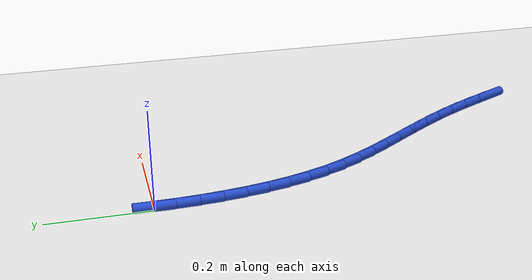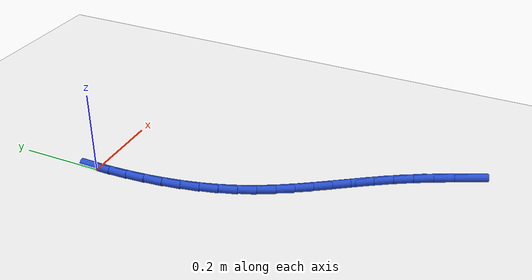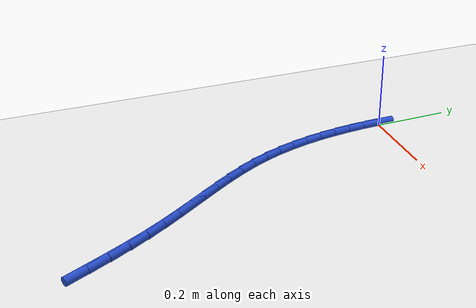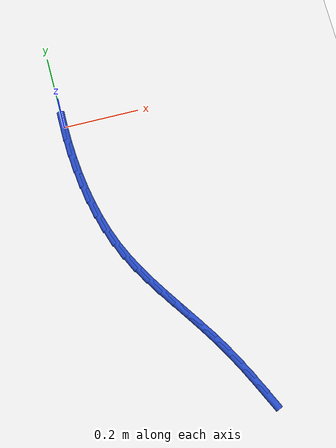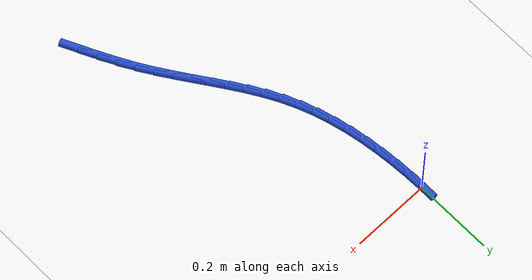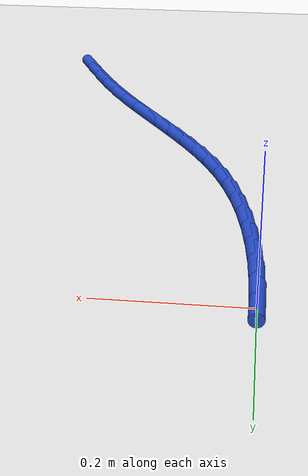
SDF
<sdf version="1.6">
 <world name="default">
  <model name="ground_plane">
   <static>1</static>
   <link name="link">
    <collision name="collision">
     <geometry><plane><normal>0 0 1</normal><size>100 100</size></plane></geometry>
     <surface><friction><ode><mu>100</mu><mu2>50</mu2></ode></friction></surface>
    </collision>
    <visual name="visual">
     <cast_shadows>0</cast_shadows>
     <geometry><plane><normal>0 0 1</normal><size>100 100</size></plane></geometry>
     <material>
      <script><uri>file://media/materials/scripts/gazebo.material</uri><name>Gazebo/WhiteGlow</name></script>
     </material>
    </visual>
   </link>
  </model>
  <model name="line">
   <link name="link_150">
    <pose>0.3311014380443241 -0.8108339071584709 0.01 0 1.57 -1.1247610447680212</pose>
    <collision name="collision">
     <geometry><cylinder><radius>0.01</radius><length>0.08</length></cylinder></geometry>
    </collision>
    <visual name="visual">
     <material>
      <script><name>Gazebo/Blue</name><uri>file://media/materials/scripts/gazebo.material</uri></script>
     </material>
     <geometry><cylinder><radius>0.01</radius><length>0.08</length></cylinder></geometry>
    </visual>
   </link>
   <link name="link_151">
    <pose>0.310461307558596 -0.767669478577255 0.01 0 1.57 -1.1051825857763986</pose>
    <collision name="collision">
     <geometry><cylinder><radius>0.01</radius><length>0.08</length></cylinder></geometry>
    </collision>
    <visual name="visual">
     <material>
      <script><name>Gazebo/Blue</name><uri>file://media/materials/scripts/gazebo.material</uri></script>
     </material>
     <geometry><cylinder><radius>0.01</radius><length>0.08</length></cylinder></geometry>
    </visual>
   </link>
   <link name="link_152">
    <pose>0.2891452997548929 -0.7252461928848328 0.01 0 1.57 -1.075672438002193</pose>
    <collision name="collision">
     <geometry><cylinder><radius>0.01</radius><length>0.08</length></cylinder></geometry>
    </collision>
    <visual name="visual">
     <material>
      <script><name>Gazebo/Blue</name><uri>file://media/materials/scripts/gazebo.material</uri></script>
     </material>
     <geometry><cylinder><radius>0.01</radius><length>0.08</length></cylinder></geometry>
    </visual>
   </link>
   <link name="link_153">
    <pose>0.2668700636188492 -0.6839948306280381 0.01 0 1.57 -1.0370139332498571</pose>
    <collision name="collision">
     <geometry><cylinder><radius>0.01</radius><length>0.08</length></cylinder></geometry>
    </collision>
    <visual name="visual">
     <material>
      <script><name>Gazebo/Blue</name><uri>file://media/materials/scripts/gazebo.material</uri></script>
     </material>
     <geometry><cylinder><radius>0.01</radius><length>0.08</length></cylinder></geometry>
    </visual>
   </link>
   <link name="link_154">
    <pose>0.24340454871275685 -0.6442906861813645 0.01 0 1.57 -1.002815760167714</pose>
    <collision name="collision">
     <geometry><cylinder><radius>0.01</radius><length>0.08</length></cylinder></geometry>
    </collision>
    <visual name="visual">
     <material>
      <script><name>Gazebo/Blue</name><uri>file://media/materials/scripts/gazebo.material</uri></script>
     </material>
     <geometry><cylinder><radius>0.01</radius><length>0.08</length></cylinder></geometry>
    </visual>
   </link>
   <link name="link_155">
    <pose>0.21898133897815675 -0.6060171798575759 0.01 0 1.57 -0.9810296128815809</pose>
    <collision name="collision">
     <geometry><cylinder><radius>0.01</radius><length>0.08</length></cylinder></geometry>
    </collision>
    <visual name="visual">
     <material>
      <script><name>Gazebo/Blue</name><uri>file://media/materials/scripts/gazebo.material</uri></script>
     </material>
     <geometry><cylinder><radius>0.01</radius><length>0.08</length></cylinder></geometry>
    </visual>
   </link>
   <link name="link_156">
    <pose>0.19407535994517278 -0.5688006295050019 0.01 0 1.57 -0.9723563475712126</pose>
    <collision name="collision">
     <geometry><cylinder><radius>0.01</radius><length>0.08</length></cylinder></geometry>
    </collision>
    <visual name="visual">
     <material>
      <script><name>Gazebo/Blue</name><uri>file://media/materials/scripts/gazebo.material</uri></script>
     </material>
     <geometry><cylinder><radius>0.01</radius><length>0.08</length></cylinder></geometry>
    </visual>
   </link>
   <link name="link_157">
    <pose>0.16916365052769092 -0.5322651108633158 0.01 0 1.57 -0.9773335428938146</pose>
    <collision name="collision">
     <geometry><cylinder><radius>0.01</radius><length>0.08</length></cylinder></geometry>
    </collision>
    <visual name="visual">
     <material>
      <script><name>Gazebo/Blue</name><uri>file://media/materials/scripts/gazebo.material</uri></script>
     </material>
     <geometry><cylinder><radius>0.01</radius><length>0.08</length></cylinder></geometry>
    </visual>
   </link>
   <link name="link_158">
    <pose>0.14472324963959676 -0.4960346996721905 0.01 0 1.57 -0.9964327889245946</pose>
    <collision name="collision">
     <geometry><cylinder><radius>0.01</radius><length>0.08</length></cylinder></geometry>
    </collision>
    <visual name="visual">
     <material>
      <script><name>Gazebo/Blue</name><uri>file://media/materials/scripts/gazebo.material</uri></script>
     </material>
     <geometry><cylinder><radius>0.01</radius><length>0.08</length></cylinder></geometry>
    </visual>
   </link>
   <link name="link_159">
    <pose>0.12123119619477724 -0.45973347167130085 0.01 0 1.57 -1.030019027546891</pose>
    <collision name="collision">
     <geometry><cylinder><radius>0.01</radius><length>0.08</length></cylinder></geometry>
    </collision>
    <visual name="visual">
     <material>
      <script><name>Gazebo/Blue</name><uri>file://media/materials/scripts/gazebo.material</uri></script>
     </material>
     <geometry><cylinder><radius>0.01</radius><length>0.08</length></cylinder></geometry>
    </visual>
   </link>
   <link name="link_160">
    <pose>0.09916452910711782 -0.4229855026003195 0.01 0 1.57 -1.0782198568889223</pose>
    <collision name="collision">
     <geometry><cylinder><radius>0.01</radius><length>0.08</length></cylinder></geometry>
    </collision>
    <visual name="visual">
     <material>
      <script><name>Gazebo/Blue</name><uri>file://media/materials/scripts/gazebo.material</uri></script>
     </material>
     <geometry><cylinder><radius>0.01</radius><length>0.08</length></cylinder></geometry>
    </visual>
   </link>
   <link name="link_161">
    <pose>0.07900028729050458 -0.38541486819892 0.01 0 1.57 -1.1405423057039856</pose>
    <collision name="collision">
     <geometry><cylinder><radius>0.01</radius><length>0.08</length></cylinder></geometry>
    </collision>
    <visual name="visual">
     <material>
      <script><name>Gazebo/Blue</name><uri>file://media/materials/scripts/gazebo.material</uri></script>
     </material>
     <geometry><cylinder><radius>0.01</radius><length>0.08</length></cylinder></geometry>
    </visual>
   </link>
   <link name="link_162">
    <pose>0.06121007350380954 -0.3466501947933334 0.01 0 1.57 -1.2087513447724771</pose>
    <collision name="collision">
     <geometry><cylinder><radius>0.01</radius><length>0.08</length></cylinder></geometry>
    </collision>
    <visual name="visual">
     <material>
      <script><name>Gazebo/Blue</name><uri>file://media/materials/scripts/gazebo.material</uri></script>
     </material>
     <geometry><cylinder><radius>0.01</radius><length>0.08</length></cylinder></geometry>
    </visual>
   </link>
   <link name="link_163">
    <pose>0.04601492263546365 -0.30652985820737916 0.01 0 1.57 -1.272123046248963</pose>
    <collision name="collision">
     <geometry><cylinder><radius>0.01</radius><length>0.08</length></cylinder></geometry>
    </collision>
    <visual name="visual">
     <material>
      <script><name>Gazebo/Blue</name><uri>file://media/materials/scripts/gazebo.material</uri></script>
     </material>
     <geometry><cylinder><radius>0.01</radius><length>0.08</length></cylinder></geometry>
    </visual>
   </link>
   <link name="link_164">
    <pose>0.0332856581228451 -0.2651853950591148 0.01 0 1.57 -1.3299310544113248</pose>
    <collision name="collision">
     <geometry><cylinder><radius>0.01</radius><length>0.08</length></cylinder></geometry>
    </collision>
    <visual name="visual">
     <material>
      <script><name>Gazebo/Blue</name><uri>file://media/materials/scripts/gazebo.material</uri></script>
     </material>
     <geometry><cylinder><radius>0.01</radius><length>0.08</length></cylinder></geometry>
    </visual>
   </link>
   <link name="link_165">
    <pose>0.02286703559957143 -0.22277016323495064 0.01 0 1.57 -1.382365760596958</pose>
    <collision name="collision">
     <geometry><cylinder><radius>0.01</radius><length>0.08</length></cylinder></geometry>
    </collision>
    <visual name="visual">
     <material>
      <script><name>Gazebo/Blue</name><uri>file://media/materials/scripts/gazebo.material</uri></script>
     </material>
     <geometry><cylinder><radius>0.01</radius><length>0.08</length></cylinder></geometry>
    </visual>
   </link>
   <link name="link_166">
    <pose>0.014603810699260457 -0.17943752062129692 0.01 0 1.57 -1.4297095662250694</pose>
    <collision name="collision">
     <geometry><cylinder><radius>0.01</radius><length>0.08</length></cylinder></geometry>
    </collision>
    <visual name="visual">
     <material>
      <script><name>Gazebo/Blue</name><uri>file://media/materials/scripts/gazebo.material</uri></script>
     </material>
     <geometry><cylinder><radius>0.01</radius><length>0.08</length></cylinder></geometry>
    </visual>
   </link>
   <link name="link_167">
    <pose>0.008340739055529999 -0.13534082510456452 0.01 0 1.57 -1.4722921748511106</pose>
    <collision name="collision">
     <geometry><cylinder><radius>0.01</radius><length>0.08</length></cylinder></geometry>
    </collision>
    <visual name="visual">
     <material>
      <script><name>Gazebo/Blue</name><uri>file://media/materials/scripts/gazebo.material</uri></script>
     </material>
     <geometry><cylinder><radius>0.01</radius><length>0.08</length></cylinder></geometry>
    </visual>
   </link>
   <link name="link_168">
    <pose>0.003922576301997823 -0.09063343457116316 0.01 0 1.57 -1.5104575118351173</pose>
    <collision name="collision">
     <geometry><cylinder><radius>0.01</radius><length>0.08</length></cylinder></geometry>
    </collision>
    <visual name="visual">
     <material>
      <script><name>Gazebo/Blue</name><uri>file://media/materials/scripts/gazebo.material</uri></script>
     </material>
     <geometry><cylinder><radius>0.01</radius><length>0.08</length></cylinder></geometry>
    </visual>
   </link>
   <link name="link_169">
    <pose>0.0011940780722819152 -0.045468706907505124 0.01 0 1.57 -1.5445408257900033</pose>
    <collision name="collision">
     <geometry><cylinder><radius>0.01</radius><length>0.08</length></cylinder></geometry>
    </collision>
    <visual name="visual">
     <material>
      <script><name>Gazebo/Blue</name><uri>file://media/materials/scripts/gazebo.material</uri></script>
     </material>
     <geometry><cylinder><radius>0.01</radius><length>0.08</length></cylinder></geometry>
    </visual>
   </link>
   <link name="link_170">
    <pose>8.673617379884035e-19 -2.220446049250313e-16 0.01 0 1.57 1.5667389083699437</pose>
    <collision name="collision">
     <geometry><cylinder><radius>0.01</radius><length>0.08</length></cylinder></geometry>
    </collision>
    <visual name="visual">
     <material>
      <script><name>Gazebo/Blue</name><uri>file://media/materials/scripts/gazebo.material</uri></script>
     </material>
     <geometry><cylinder><radius>0.01</radius><length>0.08</length></cylinder></geometry>
    </visual>
   </link>
  </model>
 </world>
</sdf>
